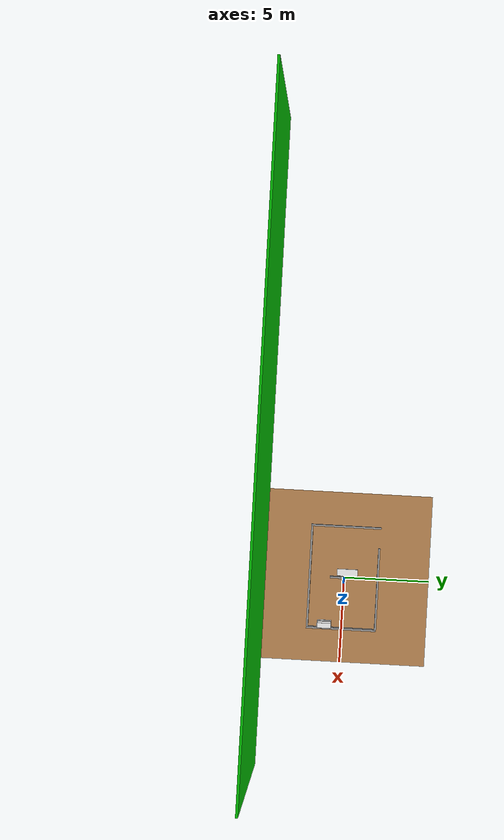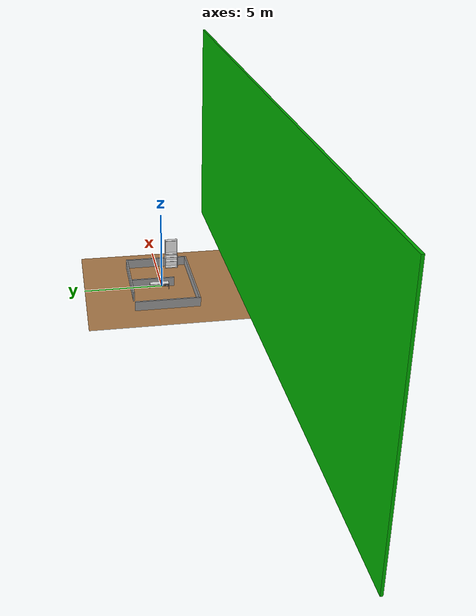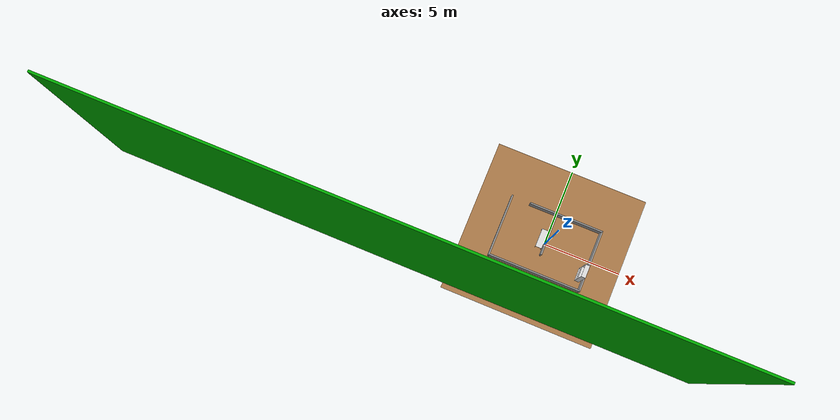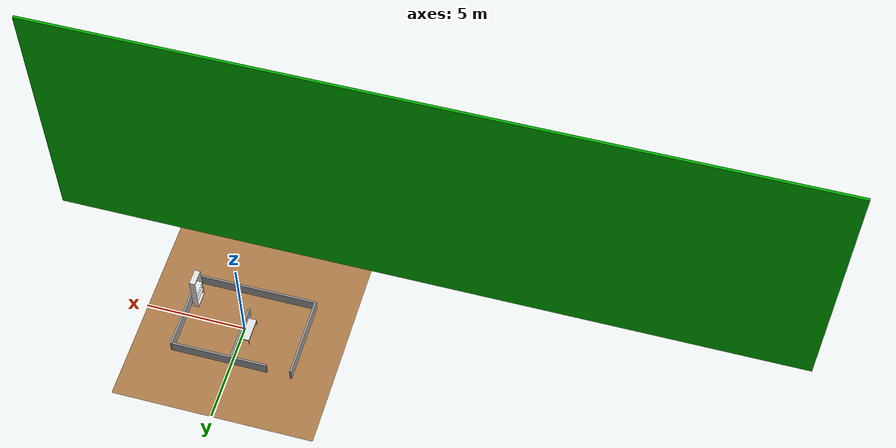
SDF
<sdf version="1.6">
 <world name="default">
  <model name="wrc_ground_plane">
   <static>1</static>
   <link name="link">
    <collision name="collision">
     <geometry><plane><normal>0 0 1</normal><size>10 10</size></plane></geometry>
     <surface>
      <contact><collide_bitmask>65535</collide_bitmask></contact>
      <friction><ode><mu>100</mu><mu2>50</mu2></ode></friction>
     </surface>
    </collision>
    <visual name="visual">
     <cast_shadows>0</cast_shadows>
     <geometry><plane><normal>0 0 1</normal><size>10 10</size></plane></geometry>
     <material>
      <script><uri>model://wrc_ground_plane/materials/wood.material</uri><name>WRS/WoodFloor</name></script>
     </material>
    </visual>
   </link>
  </model>
  <model name="wrc_frame">
   <static>1</static>
   <link name="link">
    <inertial><mass>1</mass></inertial>
    <collision name="wall_back">
     <pose>0.6 2 0.3 0 -0 0</pose>
     <geometry><box><size>4.8 0.1 0.6</size></box></geometry>
    </collision>
    <visual name="wall_back_v">
     <pose>0.6 2 0.3 0 -0 0</pose>
     <geometry><box><size>4.8 0.1 0.6</size></box></geometry>
     <material>
      <script><uri>file://media/materials/scripts/gazebo.material</uri><name>Gazebo/Gray</name></script>
     </material>
    </visual>
    <collision name="wall_front">
     <pose>0 -2 0.3 0 -0 0</pose>
     <geometry><box><size>6 0.1 0.6</size></box></geometry>
    </collision>
    <visual name="wall_front_v">
     <pose>0 -2 0.3 0 -0 0</pose>
     <geometry><box><size>6 0.1 0.6</size></box></geometry>
     <material>
      <script><uri>file://media/materials/scripts/gazebo.material</uri><name>Gazebo/Gray</name></script>
     </material>
    </visual>
    <collision name="wall_left">
     <pose>-3 0 0.3 0 -0 0</pose>
     <geometry><box><size>0.1 4.1 0.6</size></box></geometry>
    </collision>
    <visual name="wall_left_v">
     <pose>-3 0 0.3 0 -0 0</pose>
     <geometry><box><size>0.1 4.1 0.6</size></box></geometry>
     <material>
      <script><uri>file://media/materials/scripts/gazebo.material</uri><name>Gazebo/Gray</name></script>
     </material>
    </visual>
    <collision name="wall_right">
     <pose>3 0 0.3 0 -0 0</pose>
     <geometry><box><size>0.1 4.1 0.6</size></box></geometry>
    </collision>
    <visual name="wall_right_v">
     <pose>3 0 0.3 0 -0 0</pose>
     <geometry><box><size>0.1 4.1 0.6</size></box></geometry>
     <material>
      <script><uri>file://media/materials/scripts/gazebo.material</uri><name>Gazebo/Gray</name></script>
     </material>
    </visual>
    <collision name="wall_center">
     <pose>0 0.6 0.3 0 -0 0</pose>
     <geometry><box><size>0.1 2.8 0.6</size></box></geometry>
    </collision>
    <visual name="wall_center_v">
     <pose>0 0.6 0.3 0 -0 0</pose>
     <geometry><box><size>0.1 2.8 0.6</size></box></geometry>
     <material>
      <script><uri>file://media/materials/scripts/gazebo.material</uri><name>Gazebo/Gray</name></script>
     </material>
    </visual>
   </link>
  </model>
  <model name="wrc_bookshelf">
   <static>1</static>
   <link name="link">
    <inertial><mass>1</mass></inertial>
    <collision name="back">
     <pose>0 0.005 1.01 0 -0 0</pose>
     <geometry><box><size>0.8 0.01 2.02</size></box></geometry>
    </collision>
    <visual name="back_v">
     <pose>0 0.14 1.01 0 -0 0</pose>
     <geometry><box><size>0.8 0.01 2.02</size></box></geometry>
     <material>
      <script><uri>file://media/materials/scripts/gazebo.material</uri><name>Gazebo/White</name></script>
     </material>
    </visual>
    <collision name="left_side">
     <pose>0.4 0 1.01 0 -0 0</pose>
     <geometry><box><size>0.02 0.28 2.02</size></box></geometry>
    </collision>
    <visual name="left_side_v">
     <pose>0.4 0 1.01 0 -0 0</pose>
     <geometry><box><size>0.02 0.28 2.02</size></box></geometry>
     <material>
      <script><uri>file://media/materials/scripts/gazebo.material</uri><name>Gazebo/White</name></script>
     </material>
    </visual>
    <collision name="right_side">
     <pose>-0.4 0 1.01 0 -0 0</pose>
     <geometry><box><size>0.02 0.28 2.02</size></box></geometry>
    </collision>
    <visual name="right_side_v">
     <pose>-0.4 0 1.01 0 -0 0</pose>
     <geometry><box><size>0.02 0.28 2.02</size></box></geometry>
     <material>
      <script><uri>file://media/materials/scripts/gazebo.material</uri><name>Gazebo/White</name></script>
     </material>
    </visual>
    <collision name="bottom">
     <pose>0 0 0.03 0 -0 0</pose>
     <geometry><box><size>0.8 0.28 0.06</size></box></geometry>
    </collision>
    <visual name="bottom_v">
     <pose>0 0 0.03 0 -0 0</pose>
     <geometry><box><size>0.8 0.28 0.06</size></box></geometry>
     <material>
      <script><uri>file://media/materials/scripts/gazebo.material</uri><name>Gazebo/White</name></script>
     </material>
    </visual>
    <collision name="top">
     <pose>0 0 2.01 0 -0 0</pose>
     <geometry><box><size>0.8 0.28 0.02</size></box></geometry>
    </collision>
    <visual name="top_v">
     <pose>0 0 2.01 0 -0 0</pose>
     <geometry><box><size>0.8 0.28 0.02</size></box></geometry>
     <material>
      <script><uri>file://media/materials/scripts/gazebo.material</uri><name>Gazebo/White</name></script>
     </material>
    </visual>
    <collision name="slit1">
     <pose>0 0 0.49 0 -0 0</pose>
     <geometry><box><size>0.8 0.28 0.02</size></box></geometry>
    </collision>
    <visual name="slit1_v">
     <pose>0 0 0.49 0 -0 0</pose>
     <geometry><box><size>0.8 0.28 0.02</size></box></geometry>
     <material>
      <script><uri>file://media/materials/scripts/gazebo.material</uri><name>Gazebo/White</name></script>
     </material>
    </visual>
    <collision name="slit2">
     <pose>0 0 0.79 0 -0 0</pose>
     <geometry><box><size>0.8 0.28 0.02</size></box></geometry>
    </collision>
    <visual name="slit2_v">
     <pose>0 0 0.79 0 -0 0</pose>
     <geometry><box><size>0.8 0.28 0.02</size></box></geometry>
     <material>
      <script><uri>file://media/materials/scripts/gazebo.material</uri><name>Gazebo/White</name></script>
     </material>
    </visual>
    <collision name="slit3">
     <pose>0 0 1.04 0 -0 0</pose>
     <geometry><box><size>0.8 0.28 0.02</size></box></geometry>
    </collision>
    <visual name="slit3_v">
     <pose>0 0 1.04 0 -0 0</pose>
     <geometry><box><size>0.8 0.28 0.02</size></box></geometry>
     <material>
      <script><uri>file://media/materials/scripts/gazebo.material</uri><name>Gazebo/White</name></script>
     </material>
    </visual>
   </link>
   <pose>2.7 -1 0 0 0 -1.57</pose>
  </model>
  <model name="wrc_long_table">
   <static>1</static>
   <link name="link">
    <inertial><mass>1</mass></inertial>
    <collision name="top">
     <pose>0 0 0.39 0 -0 0</pose>
     <geometry><box><size>1.2 0.4 0.02</size></box></geometry>
    </collision>
    <visual name="top_v">
     <pose>0 0 0.39 0 -0 0</pose>
     <geometry><box><size>1.2 0.4 0.02</size></box></geometry>
     <material>
      <script><uri>file://media/materials/scripts/gazebo.material</uri><name>Gazebo/White</name></script>
     </material>
    </visual>
    <collision name="leg1">
     <pose>0.59 0.19 0.185 0 -0 0</pose>
     <geometry><box><size>0.02 0.02 0.4</size></box></geometry>
    </collision>
    <visual name="leg1_v">
     <pose>0.59 0.19 0.185 0 -0 0</pose>
     <geometry><box><size>0.02 0.02 0.4</size></box></geometry>
     <material>
      <script><uri>file://media/materials/scripts/gazebo.material</uri><name>Gazebo/Gray</name></script>
     </material>
    </visual>
    <collision name="leg2">
     <pose>-0.59 0.19 0.185 0 -0 0</pose>
     <geometry><box><size>0.02 0.02 0.4</size></box></geometry>
    </collision>
    <visual name="leg2_v">
     <pose>-0.59 0.19 0.185 0 -0 0</pose>
     <geometry><box><size>0.02 0.02 0.4</size></box></geometry>
     <material>
      <script><uri>file://media/materials/scripts/gazebo.material</uri><name>Gazebo/Gray</name></script>
     </material>
    </visual>
    <collision name="leg3">
     <pose>0.59 -0.19 0.185 0 -0 0</pose>
     <geometry><box><size>0.02 0.02 0.4</size></box></geometry>
    </collision>
    <visual name="leg3_v">
     <pose>0.59 -0.19 0.185 0 -0 0</pose>
     <geometry><box><size>0.02 0.02 0.4</size></box></geometry>
     <material>
      <script><uri>file://media/materials/scripts/gazebo.material</uri><name>Gazebo/Gray</name></script>
     </material>
    </visual>
    <collision name="leg4">
     <pose>-0.59 -0.19 0.185 0 -0 0</pose>
     <geometry><box><size>0.02 0.02 0.4</size></box></geometry>
    </collision>
    <visual name="leg4_v">
     <pose>-0.59 -0.19 0.185 0 -0 0</pose>
     <geometry><box><size>0.02 0.02 0.4</size></box></geometry>
     <material>
      <script><uri>file://media/materials/scripts/gazebo.material</uri><name>Gazebo/Gray</name></script>
     </material>
    </visual>
    <collision name="side_panel1">
     <pose>0.575 0 0.32 0 -0 0</pose>
     <geometry><box><size>0.01 0.4 0.04</size></box></geometry>
    </collision>
    <visual name="side_panel1_v">
     <pose>0.575 0 0.32 0 -0 0</pose>
     <geometry><box><size>0.01 0.4 0.04</size></box></geometry>
     <material>
      <script><uri>file://media/materials/scripts/gazebo.material</uri><name>Gazebo/Gray</name></script>
     </material>
    </visual>
    <collision name="side_panel2">
     <pose>-0.575 0 0.32 0 -0 0</pose>
     <geometry><box><size>0.01 0.4 0.04</size></box></geometry>
    </collision>
    <visual name="side_panel2_v">
     <pose>-0.575 0 0.32 0 -0 0</pose>
     <geometry><box><size>0.01 0.4 0.04</size></box></geometry>
     <material>
      <script><uri>file://media/materials/scripts/gazebo.material</uri><name>Gazebo/Gray</name></script>
     </material>
    </visual>
    <collision name="bar1">
     <pose>0 0.2 0.29 0 1.57 0</pose>
     <geometry><cylinder><radius>0.01</radius><length>1.16</length></cylinder></geometry>
    </collision>
    <visual name="bar1_v">
     <pose>0 0.19 0.29 0 1.57 0</pose>
     <geometry><cylinder><radius>0.01</radius><length>1.16</length></cylinder></geometry>
     <material>
      <script><uri>file://media/materials/scripts/gazebo.material</uri><name>Gazebo/Gray</name></script>
     </material>
    </visual>
    <collision name="bar2">
     <pose>0 0.08 0.29 0 1.57 0</pose>
     <geometry><cylinder><radius>0.01</radius><length>1.16</length></cylinder></geometry>
    </collision>
    <visual name="bar2_v">
     <pose>0 0.08 0.29 0 1.57 0</pose>
     <geometry><cylinder><radius>0.01</radius><length>1.16</length></cylinder></geometry>
     <material>
      <script><uri>file://media/materials/scripts/gazebo.material</uri><name>Gazebo/Gray</name></script>
     </material>
    </visual>
    <collision name="bar3">
     <pose>0 0 0.29 0 1.57 0</pose>
     <geometry><cylinder><radius>0.01</radius><length>1.16</length></cylinder></geometry>
    </collision>
    <visual name="bar3_v">
     <pose>0 0 0.29 0 1.57 0</pose>
     <geometry><cylinder><radius>0.01</radius><length>1.16</length></cylinder></geometry>
     <material>
      <script><uri>file://media/materials/scripts/gazebo.material</uri><name>Gazebo/Gray</name></script>
     </material>
    </visual>
    <collision name="bar4">
     <pose>0 -0.08 0.29 0 1.57 0</pose>
     <geometry><cylinder><radius>0.01</radius><length>1.16</length></cylinder></geometry>
    </collision>
    <visual name="bar4_v">
     <pose>0 -0.09 0.29 0 1.57 0</pose>
     <geometry><cylinder><radius>0.01</radius><length>1.16</length></cylinder></geometry>
     <material>
      <script><uri>file://media/materials/scripts/gazebo.material</uri><name>Gazebo/Gray</name></script>
     </material>
    </visual>
    <collision name="bar5">
     <pose>0 -0.18 0.29 0 1.57 0</pose>
     <geometry><cylinder><radius>0.01</radius><length>1.16</length></cylinder></geometry>
    </collision>
    <visual name="bar5_v">
     <pose>0 -0.18 0.29 0 1.57 0</pose>
     <geometry><cylinder><radius>0.01</radius><length>1.16</length></cylinder></geometry>
     <material>
      <script><uri>file://media/materials/scripts/gazebo.material</uri><name>Gazebo/Gray</name></script>
     </material>
    </visual>
   </link>
   <pose>-0.3 0.2 0 0 -0 1.57</pose>
  </model>
  <model name="training_wall">
   <link name="link">
    <inertial>
     <mass>71.1099</mass>
     <inertia><ixx>9778.1</ixx><ixy>0</ixy><ixz>0</ixz><iyy>1168.31</iyy><iyz>0</iyz><izz>8610</izz></inertia>
    </inertial>
    <pose>-8.36143 11.6881 6.14542 0 -0 0</pose>
    <visual name="visual">
     <geometry><box><size>0.132868 38.1175 14.0406</size></box></geometry>
     <material>
      <script><name>Gazebo/Grey</name><uri>file://media/materials/scripts/gazebo.material</uri></script>
      <shader type="pixel"><normal_map>__default__</normal_map></shader>
      <ambient>0.3 0.3 0.3 1</ambient>
      <diffuse>0 0.7 0 1</diffuse>
      <specular>0.01 0.01 0.01 1</specular>
      <emissive>0 0.6 0 1</emissive>
     </material>
    </visual>
    <collision name="collision">
     <geometry><box><size>0.132868 38.1175 14.0406</size></box></geometry>
     <surface>
      <friction>
       <ode><mu>1</mu><mu2>1</mu2><fdir1>0 0 0</fdir1><slip1>0</slip1><slip2>0</slip2></ode>
       <torsional>
        <coefficient>1</coefficient>
        <patch_radius>0</patch_radius>
        <surface_radius>0</surface_radius>
        <use_patch_radius>1</use_patch_radius>
        <ode><slip>0</slip></ode>
       </torsional>
      </friction>
      <bounce><restitution_coefficient>0</restitution_coefficient><threshold>1e+06</threshold></bounce>
      <contact>
       <collide_without_contact>0</collide_without_contact>
       <collide_without_contact_bitmask>1</collide_without_contact_bitmask>
       <collide_bitmask>1</collide_bitmask>
       <ode>
        <soft_cfm>0</soft_cfm>
        <soft_erp>0.2</soft_erp>
        <kp>1e+13</kp>
        <kd>1</kd>
        <max_vel>0.01</max_vel>
        <min_depth>0</min_depth>
       </ode>
       <bullet>
        <split_impulse>1</split_impulse>
        <split_impulse_penetration_threshold>-0.01</split_impulse_penetration_threshold>
        <soft_cfm>0</soft_cfm>
        <soft_erp>0.2</soft_erp>
        <kp>1e+13</kp>
        <kd>1</kd>
       </bullet>
      </contact>
     </surface>
    </collision>
   </link>
   <static>1</static>
   <pose>3.80946 3.70207 1.27366 0 -0 1.57154</pose>
  </model>
 </world>
</sdf>
